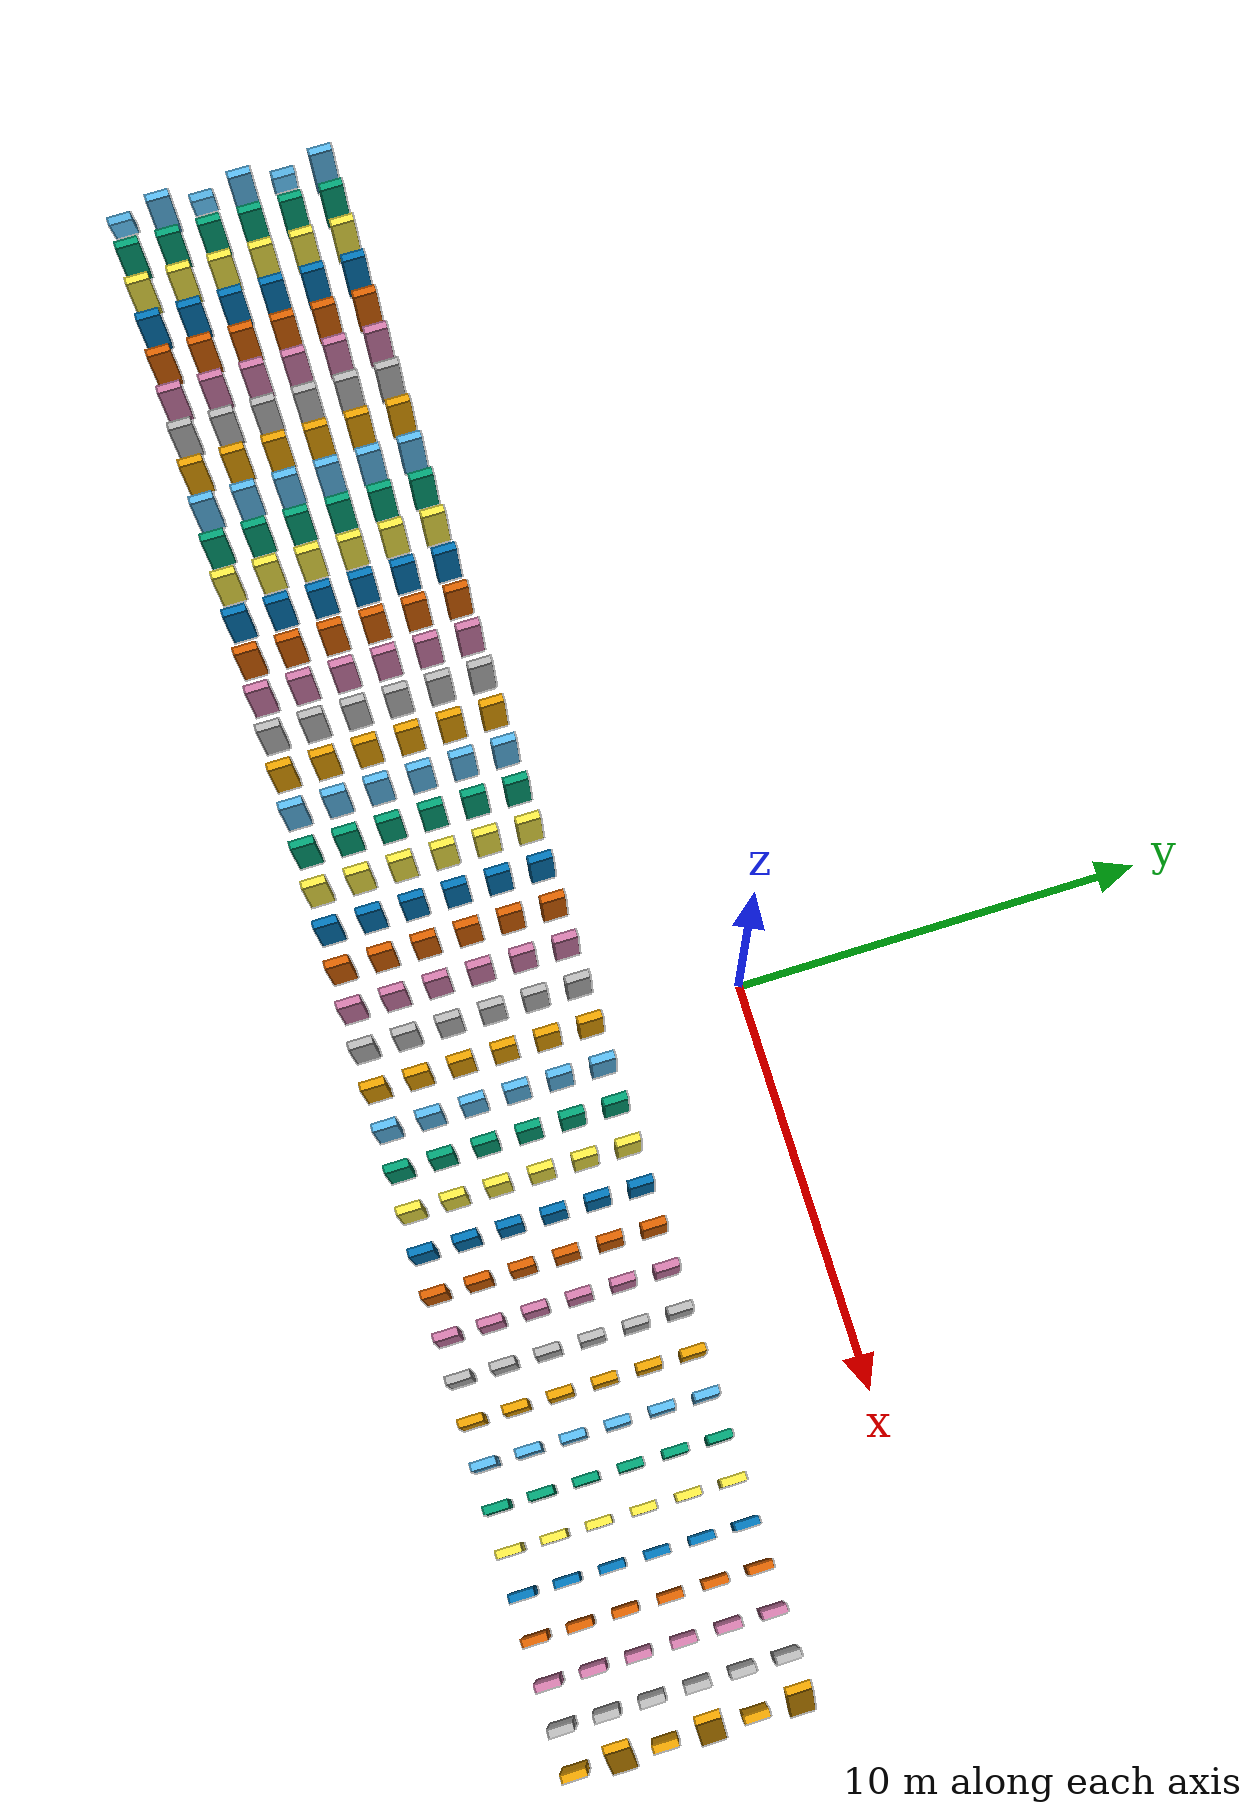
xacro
<?xml version="1.0"?>
<robot name="table_objects"
       xmlns:xi="http://www.w3.org/2001/XInclude"
       xmlns:gazebo="http://playerstage.sourceforge.net/gazebo/xmlschema/#gz"
       xmlns:model="http://playerstage.sourceforge.net/gazebo/xmlschema/#model"
       xmlns:sensor="http://playerstage.sourceforge.net/gazebo/xmlschema/#sensor"
       xmlns:body="http://playerstage.sourceforge.net/gazebo/xmlschema/#body"
       xmlns:geom="http://playerstage.sourceforge.net/gazebo/xmlschema/#geom"
       xmlns:joint="http://playerstage.sourceforge.net/gazebo/xmlschema/#joint"
       xmlns:interface="http://playerstage.sourceforge.net/gazebo/xmlschema/#interface"
       xmlns:rendering="http://playerstage.sourceforge.net/gazebo/xmlschema/#rendering"
       xmlns:renderable="http://playerstage.sourceforge.net/gazebo/xmlschema/#renderable"
       xmlns:controller="http://playerstage.sourceforge.net/gazebo/xmlschema/#controller"
       xmlns:xacro="http://ros.org/wiki/xacro"
       xmlns:physics="http://playerstage.sourceforge.net/gazebo/xmlschema/#physics">

  <property name="table_z" value="0.0" />
  <property name="table_height" value="0.0" />

  <property name="dom_height"  value="2.0" />
  <property name="dom_width"   value="0.2" />
  <property name="dom_length"  value="0.6" />
  <property name="dom_mass"    value="2.0" />
  <property name="dom_mu"      value="50.0" />

  <property name="dom_xInit" value="-23" />
  <property name="dom_yInit" value="-10" />
  <property name="dom_zInit" value="${table_z+table_height+dom_height/2.0}" />
  <property name="dom_space_y" value="1.05" />
  <property name="dom_space_x" value="1.0" />
  <property name="dom_thetaInit" value="0" />
  <property name="dom_theta_forward" value="60" />
  <property name="dom_theta_backward" value="-60" />
  <property name="dom_rotInit" value="0" />

  <link name="world"/>
  <xacro:macro name="domino" params="dom_num line_num dom_x dom_y dom_z dom_rot dom_theta">
    <joint name="dom_${line_num}_${dom_num}_joint" type="floating" >
      <parent link="world" />
      <child link="dom_${line_num}_${dom_num}" />
      <dynamics damping="0.0" />
    </joint>
    <link name="dom_${line_num}_${dom_num}">
      <origin xyz="${dom_x + dom_num*dom_space_x} ${dom_y + line_num*dom_space_y} ${dom_z}" rpy="0 0 0 " />
      <inertial>
	<mass value="${dom_mass/2.0}" />
	<origin xyz="${dom_x + dom_num*dom_space_x} ${dom_y + line_num*dom_space_y} ${dom_z}" rpy="0 0 0 " />
	<inertia ixx="${dom_mass/20.0}" ixy="0"  ixz="0"
		 iyy="${dom_mass/20.0}" iyz="0"
		 izz="${dom_mass/200.}" />
      </inertial>
      <visual>
	<origin xyz="${dom_x + dom_num*dom_space_x} ${dom_y + line_num*dom_space_y} ${dom_z}" rpy="0 ${dom_theta} ${dom_rot}" />
	<geometry>
          <box size="${dom_width} ${dom_length} ${dom_height}" />
	</geometry>
      </visual>
      <collision>
	<origin xyz="${dom_x + dom_num*dom_space_x} ${dom_y + line_num*dom_space_y} ${dom_z}" rpy="0 ${dom_theta} ${dom_rot}" />
	<geometry>
          <box size="${dom_width} ${dom_length} ${dom_height}" />
	</geometry>
      </collision>
    </link>
    <gazebo reference="dom_${line_num}_${dom_num}">
      <material>Gazebo/BumpyMetal</material>
      <mu1>0.3</mu1>
      <mu2>0.4</mu2>
      <kp>100000000.0</kp>
      <kd>1.0</kd>
      <selfCollide>true</selfCollide>
      <turnGravityOff>false</turnGravityOff>
    </gazebo>
    <gazebo>
      <canonicalBody>dom_${line_num}_${dom_num}</canonicalBody>
    </gazebo>
  </xacro:macro>

  <xacro:macro name="domino_line" params="line_num dom_x0 dom_y0 dom_z0 dom_theta0 dom_rot0 dom_theta1 dom_theta2">
    <xacro:domino line_num="${line_num}" dom_num="0" dom_x="${dom_x0}" dom_y="${dom_y0}"  dom_z="${dom_z0}" dom_theta="${dom_theta1}" dom_rot="${dom_rot0}" />
    <xacro:domino line_num="${line_num}" dom_num="1" dom_x="${dom_x0}" dom_y="${dom_y0}"  dom_z="${dom_z0}" dom_theta="${dom_theta0}" dom_rot="${dom_rot0}" />
    <xacro:domino line_num="${line_num}" dom_num="2" dom_x="${dom_x0}" dom_y="${dom_y0}"  dom_z="${dom_z0}" dom_theta="${dom_theta0}" dom_rot="${dom_rot0}" />
    <xacro:domino line_num="${line_num}" dom_num="3" dom_x="${dom_x0}" dom_y="${dom_y0}"  dom_z="${dom_z0}" dom_theta="${dom_theta0}" dom_rot="${dom_rot0}" />
    <xacro:domino line_num="${line_num}" dom_num="4" dom_x="${dom_x0}" dom_y="${dom_y0}"  dom_z="${dom_z0}" dom_theta="${dom_theta0}" dom_rot="${dom_rot0}" />
    <xacro:domino line_num="${line_num}" dom_num="5" dom_x="${dom_x0}" dom_y="${dom_y0}"  dom_z="${dom_z0}" dom_theta="${dom_theta0}" dom_rot="${dom_rot0}" />
    <xacro:domino line_num="${line_num}" dom_num="6" dom_x="${dom_x0}" dom_y="${dom_y0}"  dom_z="${dom_z0}" dom_theta="${dom_theta0}" dom_rot="${dom_rot0}" />
    <xacro:domino line_num="${line_num}" dom_num="7" dom_x="${dom_x0}" dom_y="${dom_y0}"  dom_z="${dom_z0}" dom_theta="${dom_theta0}" dom_rot="${dom_rot0}" />
    <xacro:domino line_num="${line_num}" dom_num="8" dom_x="${dom_x0}" dom_y="${dom_y0}"  dom_z="${dom_z0}" dom_theta="${dom_theta0}" dom_rot="${dom_rot0}" />
    <xacro:domino line_num="${line_num}" dom_num="9" dom_x="${dom_x0}" dom_y="${dom_y0}"  dom_z="${dom_z0}" dom_theta="${dom_theta0}" dom_rot="${dom_rot0}" />
    <xacro:domino line_num="${line_num}" dom_num="10" dom_x="${dom_x0}" dom_y="${dom_y0}" dom_z="${dom_z0}" dom_theta="${dom_theta0}" dom_rot="${dom_rot0}" />
    <xacro:domino line_num="${line_num}" dom_num="11" dom_x="${dom_x0}" dom_y="${dom_y0}" dom_z="${dom_z0}" dom_theta="${dom_theta0}" dom_rot="${dom_rot0}" />
    <xacro:domino line_num="${line_num}" dom_num="12" dom_x="${dom_x0}" dom_y="${dom_y0}" dom_z="${dom_z0}" dom_theta="${dom_theta0}" dom_rot="${dom_rot0}" />
    <xacro:domino line_num="${line_num}" dom_num="13" dom_x="${dom_x0}" dom_y="${dom_y0}" dom_z="${dom_z0}" dom_theta="${dom_theta0}" dom_rot="${dom_rot0}" />
    <xacro:domino line_num="${line_num}" dom_num="14" dom_x="${dom_x0}" dom_y="${dom_y0}" dom_z="${dom_z0}" dom_theta="${dom_theta0}" dom_rot="${dom_rot0}" />
    <xacro:domino line_num="${line_num}" dom_num="15" dom_x="${dom_x0}" dom_y="${dom_y0}" dom_z="${dom_z0}" dom_theta="${dom_theta0}" dom_rot="${dom_rot0}" />
    <xacro:domino line_num="${line_num}" dom_num="16" dom_x="${dom_x0}" dom_y="${dom_y0}" dom_z="${dom_z0}" dom_theta="${dom_theta0}" dom_rot="${dom_rot0}" />
    <xacro:domino line_num="${line_num}" dom_num="17" dom_x="${dom_x0}" dom_y="${dom_y0}" dom_z="${dom_z0}" dom_theta="${dom_theta0}" dom_rot="${dom_rot0}" />
    <xacro:domino line_num="${line_num}" dom_num="18" dom_x="${dom_x0}" dom_y="${dom_y0}" dom_z="${dom_z0}" dom_theta="${dom_theta0}" dom_rot="${dom_rot0}" />
    <xacro:domino line_num="${line_num}" dom_num="19" dom_x="${dom_x0}" dom_y="${dom_y0}" dom_z="${dom_z0}" dom_theta="${dom_theta0}" dom_rot="${dom_rot0}" />
    <xacro:domino line_num="${line_num}" dom_num="20" dom_x="${dom_x0}" dom_y="${dom_y0}" dom_z="${dom_z0}" dom_theta="${dom_theta0}" dom_rot="${dom_rot0}" />
    <xacro:domino line_num="${line_num}" dom_num="21" dom_x="${dom_x0}" dom_y="${dom_y0}" dom_z="${dom_z0}" dom_theta="${dom_theta0}" dom_rot="${dom_rot0}" />
    <xacro:domino line_num="${line_num}" dom_num="22" dom_x="${dom_x0}" dom_y="${dom_y0}" dom_z="${dom_z0}" dom_theta="${dom_theta0}" dom_rot="${dom_rot0}" />
    <xacro:domino line_num="${line_num}" dom_num="23" dom_x="${dom_x0}" dom_y="${dom_y0}" dom_z="${dom_z0}" dom_theta="${dom_theta0}" dom_rot="${dom_rot0}" />
    <xacro:domino line_num="${line_num}" dom_num="24" dom_x="${dom_x0}" dom_y="${dom_y0}" dom_z="${dom_z0}" dom_theta="${dom_theta0}" dom_rot="${dom_rot0}" />
    <xacro:domino line_num="${line_num}" dom_num="25" dom_x="${dom_x0}" dom_y="${dom_y0}" dom_z="${dom_z0}" dom_theta="${dom_theta0}" dom_rot="${dom_rot0}" />
    <xacro:domino line_num="${line_num}" dom_num="26" dom_x="${dom_x0}" dom_y="${dom_y0}" dom_z="${dom_z0}" dom_theta="${dom_theta0}" dom_rot="${dom_rot0}" />
    <xacro:domino line_num="${line_num}" dom_num="27" dom_x="${dom_x0}" dom_y="${dom_y0}" dom_z="${dom_z0}" dom_theta="${dom_theta0}" dom_rot="${dom_rot0}" />
    <xacro:domino line_num="${line_num}" dom_num="28" dom_x="${dom_x0}" dom_y="${dom_y0}" dom_z="${dom_z0}" dom_theta="${dom_theta0}" dom_rot="${dom_rot0}" />
    <xacro:domino line_num="${line_num}" dom_num="29" dom_x="${dom_x0}" dom_y="${dom_y0}" dom_z="${dom_z0}" dom_theta="${dom_theta0}" dom_rot="${dom_rot0}" />
    <xacro:domino line_num="${line_num}" dom_num="30" dom_x="${dom_x0}" dom_y="${dom_y0}" dom_z="${dom_z0}" dom_theta="${dom_theta0}" dom_rot="${dom_rot0}" />
    <xacro:domino line_num="${line_num}" dom_num="31" dom_x="${dom_x0}" dom_y="${dom_y0}" dom_z="${dom_z0}" dom_theta="${dom_theta0}" dom_rot="${dom_rot0}" />
    <xacro:domino line_num="${line_num}" dom_num="32" dom_x="${dom_x0}" dom_y="${dom_y0}" dom_z="${dom_z0}" dom_theta="${dom_theta0}" dom_rot="${dom_rot0}" />
    <xacro:domino line_num="${line_num}" dom_num="33" dom_x="${dom_x0}" dom_y="${dom_y0}" dom_z="${dom_z0}" dom_theta="${dom_theta0}" dom_rot="${dom_rot0}" />
    <xacro:domino line_num="${line_num}" dom_num="34" dom_x="${dom_x0}" dom_y="${dom_y0}" dom_z="${dom_z0}" dom_theta="${dom_theta0}" dom_rot="${dom_rot0}" />
    <xacro:domino line_num="${line_num}" dom_num="35" dom_x="${dom_x0}" dom_y="${dom_y0}" dom_z="${dom_z0}" dom_theta="${dom_theta0}" dom_rot="${dom_rot0}" />
    <xacro:domino line_num="${line_num}" dom_num="36" dom_x="${dom_x0}" dom_y="${dom_y0}" dom_z="${dom_z0}" dom_theta="${dom_theta0}" dom_rot="${dom_rot0}" />
    <xacro:domino line_num="${line_num}" dom_num="37" dom_x="${dom_x0}" dom_y="${dom_y0}" dom_z="${dom_z0}" dom_theta="${dom_theta0}" dom_rot="${dom_rot0}" />
    <xacro:domino line_num="${line_num}" dom_num="38" dom_x="${dom_x0}" dom_y="${dom_y0}" dom_z="${dom_z0}" dom_theta="${dom_theta0}" dom_rot="${dom_rot0}" />
    <xacro:domino line_num="${line_num}" dom_num="39" dom_x="${dom_x0}" dom_y="${dom_y0}" dom_z="${dom_z0}" dom_theta="${dom_theta2}" dom_rot="${dom_rot0}" />  -->
  </xacro:macro>

  <xacro:domino_line line_num="1" dom_x0="${dom_xInit}" dom_y0="${dom_yInit}" dom_z0="${dom_zInit}" dom_theta0="${dom_thetaInit}" dom_rot0="${dom_rotInit}"   dom_theta1="${dom_theta_forward}" dom_theta2="${dom_thetaInit}" />
  <xacro:domino_line line_num="2" dom_x0="${dom_xInit}" dom_y0="${dom_yInit}" dom_z0="${dom_zInit}" dom_theta0="${dom_thetaInit}" dom_rot0="${dom_rotInit}"   dom_theta1="${dom_thetaInit}"     dom_theta2="${dom_theta_backward}"  />
  <xacro:domino_line line_num="3" dom_x0="${dom_xInit}" dom_y0="${dom_yInit}" dom_z0="${dom_zInit}" dom_theta0="${dom_thetaInit}" dom_rot0="${dom_rotInit}"   dom_theta1="${dom_theta_forward}" dom_theta2="${dom_thetaInit}"  />
  <xacro:domino_line line_num="4" dom_x0="${dom_xInit}" dom_y0="${dom_yInit}" dom_z0="${dom_zInit}" dom_theta0="${dom_thetaInit}" dom_rot0="${dom_rotInit}"   dom_theta1="${dom_thetaInit}"     dom_theta2="${dom_theta_backward}"  />
  <xacro:domino_line line_num="5" dom_x0="${dom_xInit}" dom_y0="${dom_yInit}" dom_z0="${dom_zInit}" dom_theta0="${dom_thetaInit}" dom_rot0="${dom_rotInit}"   dom_theta1="${dom_theta_forward}" dom_theta2="${dom_thetaInit}"  />
  <xacro:domino_line line_num="6" dom_x0="${dom_xInit}" dom_y0="${dom_yInit}" dom_z0="${dom_zInit}" dom_theta0="${dom_thetaInit}" dom_rot0="${dom_rotInit}"   dom_theta1="${dom_thetaInit}"     dom_theta2="${dom_theta_backward}"  />

</robot>
